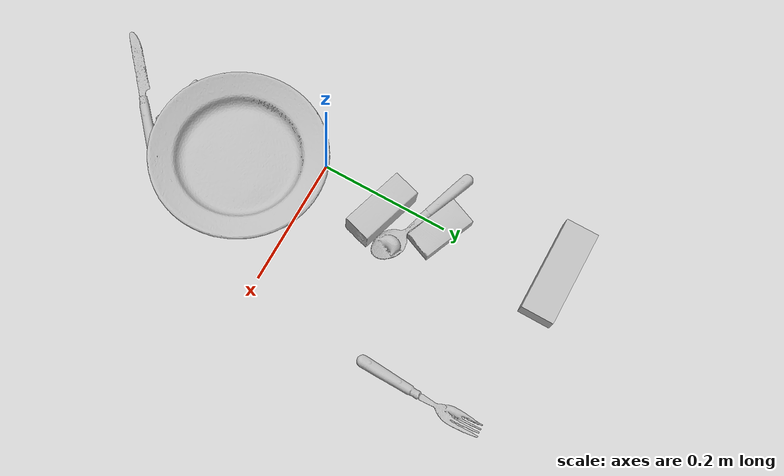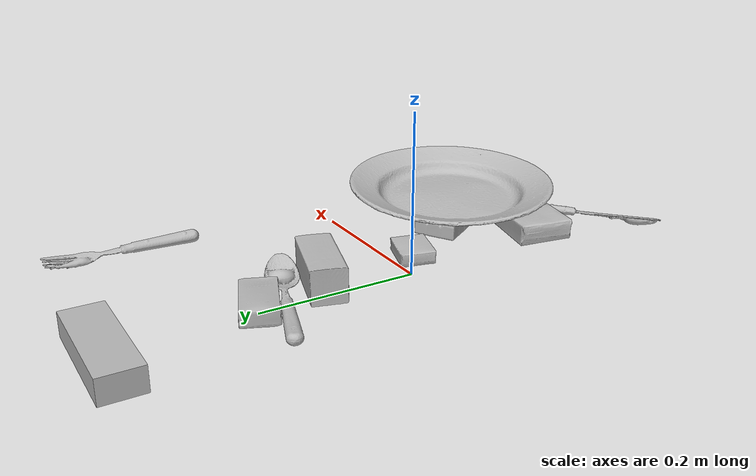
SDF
<sdf version="1.4">
  <world name="default">
    <light name="light1" type="point">
      <pose>0 0 1 0 0 0</pose>
      <diffuse>3 3 3 1</diffuse>
      <specular>3 3 3 1</specular>
    </light>
    <light name="light2" type="point">
      <pose>0 0.5 2 0 0 0</pose>
      <diffuse>1 1 1 1</diffuse>
      <specular>1 1 1 1</specular>
    </light>
    <light name="light3" type="point">
      <pose>0 0.5 2 0 0 0</pose>
      <diffuse>3 3 3 1</diffuse>
      <specular>3 3 3 1</specular>
    </light>
    <scene>
      <ambient>0.7 0.7 0.7</ambient>
    </scene>
    <model name="box11">
      <link name="link_box11">
        <collision name="default">
          <geometry>
            <mesh>
              <uri>model://jenga/collision_meshes/collision.obj</uri>
              <scale>1.0 1.0 1.0</scale>
            </mesh>
          </geometry>
          <surface>
            <friction>
              <ode>
                <mu>0.5</mu>
                <mu2>0.5</mu2>
              </ode>
            </friction>
          <contact>
        <ode>
            <max_vel>0</max_vel>
            <min_depth>0.0001</min_depth>
            <kp>1e8</kp>
        </ode>
    </contact></surface>
        </collision>
        <visual name="default">
          <geometry>
            <mesh>
              <uri>model://jenga/visual_meshes/visual.dae</uri>
              <scale>1.0 1.0 1.0</scale>
            </mesh>
          </geometry>
        </visual>
        <inertial>
          <mass>0.24099597334861755</mass>
          <pose>-2.502855807051674e-07 -0.00010250010382151231 -4.0923401684267446e-05 0.0 -7.34215461761844e-07 0.0</pose>
          <inertia>
            <ixx>6.668944e-05</ixx>
            <iyy>0.0004518858</iyy>
            <izz>0.00048242652</izz>
            <ixy>0</ixy>
            <ixz>0</ixz>
            <iyz>0</iyz>
          </inertia>
        </inertial>
      </link>
      <pose>-0.018306681886315346 0.3745131194591522 0.014999995008111 3.0099324091945527e-09 -1.3427042877015194e-09 -0.004379625731739009</pose>
    </model>
    <model name="box12">
      <link name="link_box12">
        <collision name="default">
          <geometry>
            <mesh>
              <uri>model://wood_block/collision_meshes/collision.obj</uri>
              <scale>0.5 0.5 0.5</scale>
            </mesh>
          </geometry>
          <surface>
            <friction>
              <ode>
                <mu>0.5</mu>
                <mu2>0.5</mu2>
              </ode>
            </friction>
          <contact>
        <ode>
            <max_vel>0</max_vel>
            <min_depth>0.0001</min_depth>
            <kp>1e8</kp>
        </ode>
    </contact></surface>
        </collision>
        <visual name="default">
          <geometry>
            <mesh>
              <uri>model://wood_block/visual_meshes/visual.dae</uri>
              <scale>0.5 0.5 0.5</scale>
            </mesh>
          </geometry>
        </visual>
        <inertial>
          <mass>0.14152581989765167</mass>
          <pose>-2.9066577553749084e-06 -0.000285404734313488 0.00013204291462898254 -0.05220812938960465 -0.005192695343712196 -0.006861377662393293</pose>
          <inertia>
            <ixx>4.7345737e-05</ixx>
            <iyy>0.0001495652</iyy>
            <izz>0.00014900575</izz>
            <ixy>0</ixy>
            <ixz>0</ixz>
            <iyz>0</iyz>
          </inertia>
        </inertial>
      </link>
      <pose>0.026737507432699203 0.1080351173877716 0.022629249840974808 -0.005206725912542117 0.005719097475690816 -0.29393458744866646</pose>
    </model>
    <model name="box13">
      <link name="link_box13">
        <collision name="default">
          <geometry>
            <mesh>
              <uri>model://sugar_box/collision_meshes/collision.obj</uri>
              <scale>0.5 0.5 0.5</scale>
            </mesh>
          </geometry>
          <surface>
            <friction>
              <ode>
                <mu>0.5</mu>
                <mu2>0.5</mu2>
              </ode>
            </friction>
          <contact>
        <ode>
            <max_vel>0</max_vel>
            <min_depth>0.0001</min_depth>
            <kp>1e8</kp>
        </ode>
    </contact></surface>
        </collision>
        <visual name="default">
          <geometry>
            <mesh>
              <uri>model://sugar_box/visual_meshes/visual.dae</uri>
              <scale>0.5 0.5 0.5</scale>
            </mesh>
          </geometry>
        </visual>
        <inertial>
          <mass>0.08336380124092102</mass>
          <pose>0.0005171863595023751 1.924554817378521e-05 -0.00018182402709499002 -0.0004046263001201691 0.0010506636386254094 0.0026153790217303746</pose>
          <inertia>
            <ixx>1.7364619e-05</ixx>
            <iyy>5.612603e-05</iyy>
            <izz>6.718955e-05</izz>
            <ixy>0</ixy>
            <ixz>0</ixz>
            <iyz>0</iyz>
          </inertia>
        </inertial>
      </link>
      <pose>0.006602473556995392 0.1954183727502823 0.011399299837648869 0.0007753183596808992 -0.02343326647878497 2.742699067411049</pose>
    </model>
    <model name="box21">
      <link name="link_box21">
        <collision name="default">
          <geometry>
            <mesh>
              <uri>model://pudding_box/collision_meshes/collision.obj</uri>
              <scale>0.5 0.5 0.5</scale>
            </mesh>
          </geometry>
          <surface>
            <friction>
              <ode>
                <mu>0.5</mu>
                <mu2>0.5</mu2>
              </ode>
            </friction>
          <contact>
        <ode>
            <max_vel>0</max_vel>
            <min_depth>0.0001</min_depth>
            <kp>1e8</kp>
        </ode>
    </contact></surface>
        </collision>
        <visual name="default">
          <geometry>
            <mesh>
              <uri>model://pudding_box/visual_meshes/visual.dae</uri>
              <scale>0.5 0.5 0.5</scale>
            </mesh>
          </geometry>
        </visual>
        <inertial>
          <mass>0.025778822600841522</mass>
          <pose>0.00024474109522998333 0.00040339428232982755 -0.0002594413817860186 0.005213100851918505 -0.006603799640504885 0.02007982516037135</pose>
          <inertia>
            <ixx>7.285408e-06</ixx>
            <iyy>4.901674e-06</iyy>
            <izz>1.07588085e-05</izz>
            <ixy>0</ixy>
            <ixz>0</ixz>
            <iyz>0</iyz>
          </inertia>
        </inertial>
      </link>
      <pose>0.040943361818790436 -0.028363488614559174 0.009862900711596012 0.02234849407537211 -0.011391716920568982 -1.8617026770678216</pose>
    </model>
    <model name="box22">
      <link name="link_box22">
        <collision name="default">
          <geometry>
            <mesh>
              <uri>model://rubiks_cube/collision_meshes/collision.obj</uri>
              <scale>1.0 1.0 1.0</scale>
            </mesh>
          </geometry>
          <surface>
            <friction>
              <ode>
                <mu>0.5</mu>
                <mu2>0.5</mu2>
              </ode>
            </friction>
          <contact>
        <ode>
            <max_vel>0</max_vel>
            <min_depth>0.0001</min_depth>
            <kp>1e8</kp>
        </ode>
    </contact></surface>
        </collision>
        <visual name="default">
          <geometry>
            <mesh>
              <uri>model://rubiks_cube/visual_meshes/visual.dae</uri>
              <scale>1.0 1.0 1.0</scale>
            </mesh>
          </geometry>
        </visual>
        <inertial>
          <mass>0.22147096693515778</mass>
          <pose>2.6721041649580002e-05 5.256967051536776e-05 -7.264316082000732e-06 -0.05467273282600652 -0.09814100107642566 -0.034457018786431724</pose>
          <inertia>
            <ixx>0.00012237758</ixx>
            <iyy>0.00012180688</iyy>
            <izz>0.00012339167</izz>
            <ixy>0</ixy>
            <ixz>0</ixz>
            <iyz>0</iyz>
          </inertia>
        </inertial>
      </link>
      <pose>0.09648380428552628 -0.11233897507190704 0.028679020702838898 1.564868496269605e-06 -1.506571156864494e-06 -0.9811145730708399</pose>
    </model>
    <model name="box23">
      <link name="link_box23">
        <collision name="default">
          <geometry>
            <mesh>
              <uri>model://gelatin_box/collision_meshes/collision.obj</uri>
              <scale>1.0 1.0 1.0</scale>
            </mesh>
          </geometry>
          <surface>
            <friction>
              <ode>
                <mu>0.5</mu>
                <mu2>0.5</mu2>
              </ode>
            </friction>
          <contact>
        <ode>
            <max_vel>0</max_vel>
            <min_depth>0.0001</min_depth>
            <kp>1e8</kp>
        </ode>
    </contact></surface>
        </collision>
        <visual name="default">
          <geometry>
            <mesh>
              <uri>model://gelatin_box/visual_meshes/visual.dae</uri>
              <scale>1.0 1.0 1.0</scale>
            </mesh>
          </geometry>
        </visual>
        <inertial>
          <mass>0.20053431391716003</mass>
          <pose>0.0004319618456065655 0.00011156871914863586 -0.00036403207923285663 -0.001050372330881514 -0.004755818219920532 0.016440563197859918</pose>
          <inertia>
            <ixx>0.00014156084</ixx>
            <iyy>0.00010111618</iyy>
            <izz>0.00021548718</izz>
            <ixy>0</ixy>
            <ixz>0</ixz>
            <iyz>0</iyz>
          </inertia>
        </inertial>
      </link>
      <pose>0.03343730792403221 -0.2125849723815918 0.015168312005698681 0.005597434050376257 -0.007304497862678361 -1.789397137516012</pose>
    </model>
    <model name="plate1">
      <link name="link_plate1">
        <collision name="default">
          <geometry>
            <mesh>
              <uri>model://plate/collision_meshes/collision.obj</uri>
              <scale>1.0 1.0 1.0</scale>
            </mesh>
          </geometry>
          <surface>
            <friction>
              <ode>
                <mu>0.5</mu>
                <mu2>0.5</mu2>
              </ode>
            </friction>
          <contact>
        <ode>
            <max_vel>0</max_vel>
            <min_depth>0.0001</min_depth>
            <kp>1e8</kp>
        </ode>
    </contact></surface>
        </collision>
        <visual name="default">
          <geometry>
            <mesh>
              <uri>model://plate/visual_meshes/visual.dae</uri>
              <scale>1.0 1.0 1.0</scale>
            </mesh>
          </geometry>
        </visual>
        <inertial>
          <mass>0.1705944687128067</mass>
          <pose>-0.0006044638575986028 0.0002782570372801274 -0.0010561983799561858 0.002218806973518856 -0.003225464946202784 0.4526031622217862</pose>
          <inertia>
            <ixx>0.0007980444</ixx>
            <iyy>0.0007904114</iyy>
            <izz>0.0015608557</izz>
            <ixy>0</ixy>
            <ixz>0</ixz>
            <iyz>0</iyz>
          </inertia>
        </inertial>
      </link>
      <pose>0.07021716982126236 -0.10431339591741562 0.0689675509929657 -0.05866853577668996 0.005638019640204617 1.1536003599791094</pose>
    </model>
    <model name="silverware1">
      <link name="link_silverware1">
        <collision name="default">
          <geometry>
            <mesh>
              <uri>model://fork/collision_meshes/collision.obj</uri>
              <scale>1.0 1.0 1.0</scale>
            </mesh>
          </geometry>
          <surface>
            <friction>
              <ode>
                <mu>0.5</mu>
                <mu2>0.5</mu2>
              </ode>
            </friction>
          <contact>
        <ode>
            <max_vel>0</max_vel>
            <min_depth>0.0001</min_depth>
            <kp>1e8</kp>
        </ode>
    </contact></surface>
        </collision>
        <visual name="default">
          <geometry>
            <mesh>
              <uri>model://fork/visual_meshes/visual.dae</uri>
              <scale>1.0 1.0 1.0</scale>
            </mesh>
          </geometry>
        </visual>
        <inertial>
          <mass>0.02693658135831356</mass>
          <pose>-0.02957003191113472 0.00046588244731538 0.0003218860365450382 -0.013551533598057301 -0.010977833518912038 0.014453896181446386</pose>
          <inertia>
            <ixx>9.442797e-07</ixx>
            <iyy>7.032368e-05</iyy>
            <izz>7.074603e-05</izz>
            <ixy>0</ixy>
            <ixz>0</ixz>
            <iyz>0</iyz>
          </inertia>
        </inertial>
      </link>
      <pose>0.23465730249881744 0.2809697687625885 0.0057467189617455006 -0.19106979089078902 0.02408912974193437 1.5325777721984333</pose>
    </model>
    <model name="silverware2">
      <link name="link_silverware2">
        <collision name="default">
          <geometry>
            <mesh>
              <uri>model://knife/collision_meshes/collision.obj</uri>
              <scale>1.0 1.0 1.0</scale>
            </mesh>
          </geometry>
          <surface>
            <friction>
              <ode>
                <mu>0.5</mu>
                <mu2>0.5</mu2>
              </ode>
            </friction>
          <contact>
        <ode>
            <max_vel>0</max_vel>
            <min_depth>0.0001</min_depth>
            <kp>1e8</kp>
        </ode>
    </contact></surface>
        </collision>
        <visual name="default">
          <geometry>
            <mesh>
              <uri>model://knife/visual_meshes/visual.dae</uri>
              <scale>1.0 1.0 1.0</scale>
            </mesh>
          </geometry>
        </visual>
        <inertial>
          <mass>0.029087698087096214</mass>
          <pose>-0.023785242810845375 0.0015275123296305537 5.0620237743714824e-05 0.07305335090844457 0.017248415402536993 -0.007409830271159857</pose>
          <inertia>
            <ixx>8.256269e-07</ixx>
            <iyy>0.00011175022</iyy>
            <izz>0.00011201614</izz>
            <ixy>0</ixy>
            <ixz>0</ixz>
            <iyz>0</iyz>
          </inertia>
        </inertial>
      </link>
      <pose>0.03575191646814346 -0.3026424050331116 0.008136843331158161 -0.28171301460096787 -0.008872329112086784 -2.4094308060395604</pose>
    </model>
    <model name="silverware3">
      <link name="link_silverware3">
        <collision name="default">
          <geometry>
            <mesh>
              <uri>model://spoon/collision_meshes/collision.obj</uri>
              <scale>1.0 1.0 1.0</scale>
            </mesh>
          </geometry>
          <surface>
            <friction>
              <ode>
                <mu>0.5</mu>
                <mu2>0.5</mu2>
              </ode>
            </friction>
          <contact>
        <ode>
            <max_vel>0</max_vel>
            <min_depth>0.0001</min_depth>
            <kp>1e8</kp>
        </ode>
    </contact></surface>
        </collision>
        <visual name="default">
          <geometry>
            <mesh>
              <uri>model://spoon/visual_meshes/visual.dae</uri>
              <scale>1.0 1.0 1.0</scale>
            </mesh>
          </geometry>
        </visual>
        <inertial>
          <mass>0.04163059964776039</mass>
          <pose>-0.005526324268430471 -0.001603418029844761 -0.0007271656068041921 0.035215733596471024 -0.03906582179646946 0.006150610371924991</pose>
          <inertia>
            <ixx>2.3155617e-06</ixx>
            <iyy>0.00015840305</iyy>
            <izz>0.00015954502</izz>
            <ixy>0</ixy>
            <ixz>0</ixz>
            <iyz>0</iyz>
          </inertia>
        </inertial>
      </link>
      <pose>0.0025120198260992765 0.1659879982471466 0.00838361494243145 -0.010483413136698982 0.026718913663569044 -0.35666594380148575</pose>
    </model>
  <physics type="ode">
      <max_contacts>50</max_contacts>
      <ode>
        <solver>
          <type>quick</type>
          <iters>75</iters>
        </solver>
        <constraints>
          <contact_max_correcting_vel>0</contact_max_correcting_vel>
          <contact_surface_layer>0</contact_surface_layer>
        </constraints>
      </ode>
    </physics></world>
</sdf>
